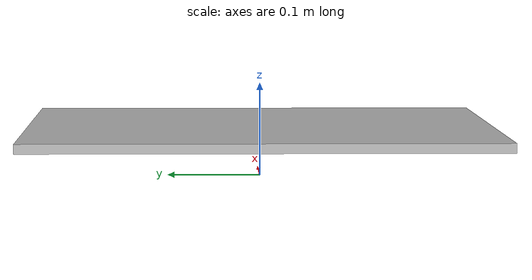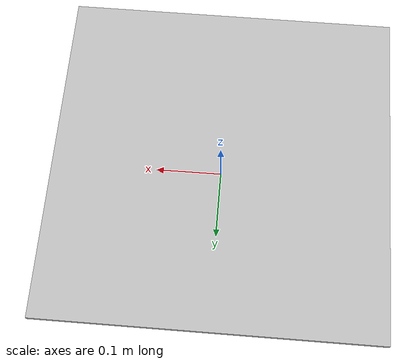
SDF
<?xml version='1.0'?>
<sdf version='1.4'>
  <model name="multi_mark_small">
    <pose>0 0 0.05 0 0 3.14</pose>
    <static>true</static>
    <link name='link'>
      <pose>0 0 0 0 0 0</pose>
      <inertial>
        <mass>0.390</mass>
        <inertia>
          <ixx>0.00058</ixx>
          <ixy>0</ixy>
          <ixz>0</ixz>
          <iyy>0.00058</iyy>
          <iyz>0</iyz>
          <izz>0.00019</izz>
        </inertia>
      </inertial>
      <collision name='collision'>
        <geometry>
                <box>
                  <size>.5 .5 .01</size>
                </box>
        </geometry>
      </collision>

      <visual name='visual'>
        <geometry>
                <box>
                  <size>.5 .5 .01</size>
                </box>
        </geometry>

        <material>
          <script>
            <uri>model://multi_mark_small/materials/scripts</uri>
            <uri>model://multi_mark_small/materials/textures</uri>
            <name>Mark/Diffuse</name>
          </script>
        </material>
      </visual>
    </link>
  </model>
</sdf>
